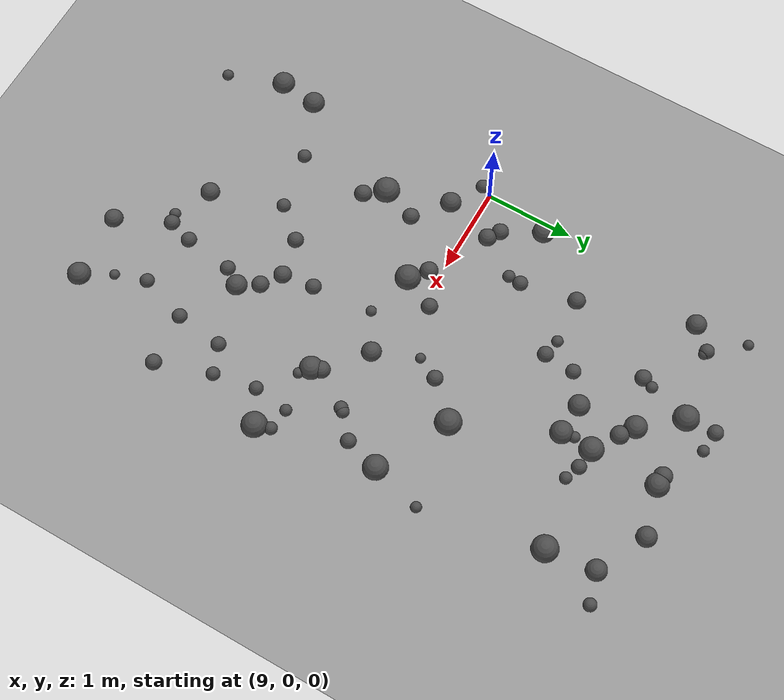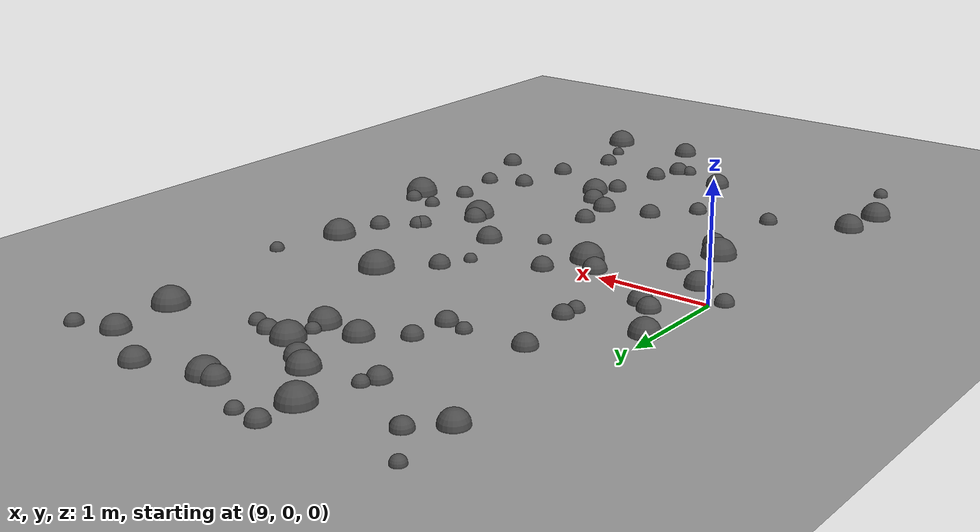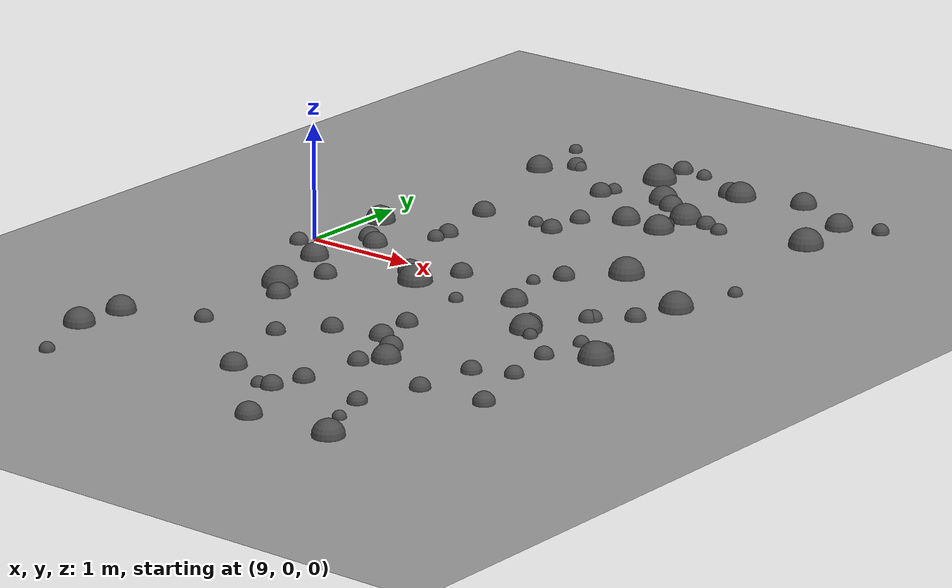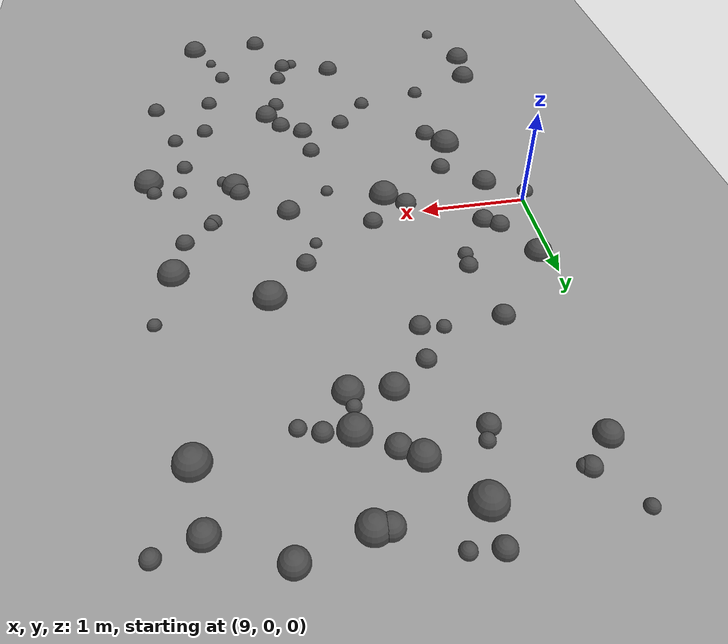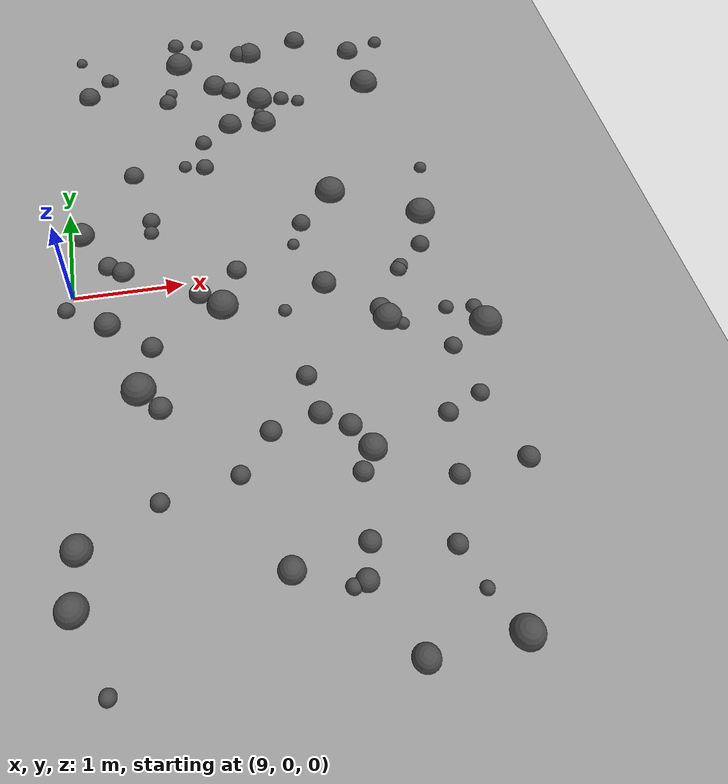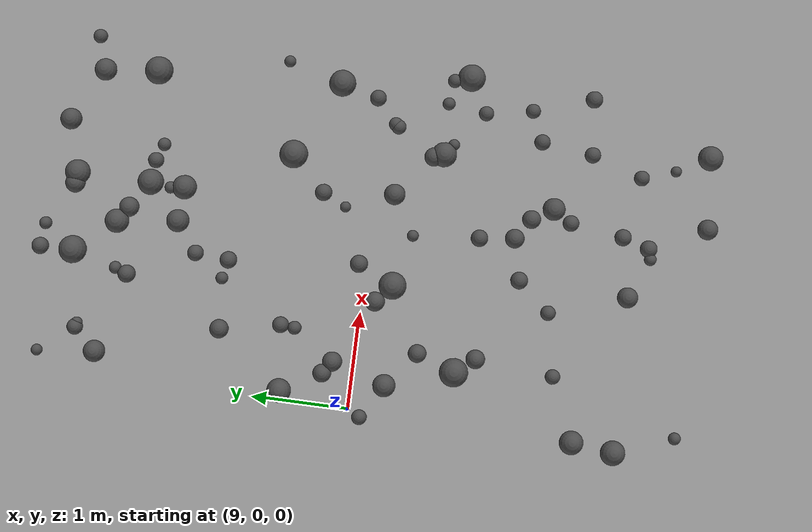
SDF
<sdf version="1.8">
 <world name="bumpy_world">
  <model name="ground_plane">
   <static>true</static>
   <link name="link">
    <collision name="collision">
     <geometry><plane><normal>0 0 1</normal><size>100 100</size></plane></geometry>
    </collision>
    <visual name="visual">
     <geometry><plane><normal>0 0 1</normal><size>100 100</size></plane></geometry>
     <material><ambient>0.6 0.6 0.6 1</ambient><diffuse>0.6 0.6 0.6 1</diffuse></material>
    </visual>
   </link>
  </model>
  <model name="bump_2">
   <static>true</static>
   <pose>10.78362684058745 2.53112443563 0.0 0 0 0</pose>
   <link name="link">
    <collision name="collision">
     <geometry><sphere><radius>0.1036423874634214</radius></sphere></geometry>
    </collision>
    <visual name="visual">
     <geometry><sphere><radius>0.1036423874634214</radius></sphere></geometry>
     <material><ambient>0.3 0.3 0.3 1</ambient><diffuse>0.3 0.3 0.3 1</diffuse></material>
    </visual>
   </link>
  </model>
  <model name="bump_5">
   <static>true</static>
   <pose>11.07236753158197 2.3464384934078577 0.0 0 0 0</pose>
   <link name="link">
    <collision name="collision">
     <geometry><sphere><radius>0.13613267017171343</radius></sphere></geometry>
    </collision>
    <visual name="visual">
     <geometry><sphere><radius>0.13613267017171343</radius></sphere></geometry>
     <material><ambient>0.3 0.3 0.3 1</ambient><diffuse>0.3 0.3 0.3 1</diffuse></material>
    </visual>
   </link>
  </model>
  <model name="bump_7">
   <static>true</static>
   <pose>10.704462672300258 2.008785588336943 0.0 0 0 0</pose>
   <link name="link">
    <collision name="collision">
     <geometry><sphere><radius>0.11955917482990376</radius></sphere></geometry>
    </collision>
    <visual name="visual">
     <geometry><sphere><radius>0.11955917482990376</radius></sphere></geometry>
     <material><ambient>0.3 0.3 0.3 1</ambient><diffuse>0.3 0.3 0.3 1</diffuse></material>
    </visual>
   </link>
  </model>
  <model name="bump_14">
   <static>true</static>
   <pose>9.646156853162468 1.4279251669553972 0.0 0 0 0</pose>
   <link name="link">
    <collision name="collision">
     <geometry><sphere><radius>0.09876939465368231</radius></sphere></geometry>
    </collision>
    <visual name="visual">
     <geometry><sphere><radius>0.09876939465368231</radius></sphere></geometry>
     <material><ambient>0.3 0.3 0.3 1</ambient><diffuse>0.3 0.3 0.3 1</diffuse></material>
    </visual>
   </link>
  </model>
  <model name="bump_15">
   <static>true</static>
   <pose>11.625946613682755 3.2676857726138175 0.0 0 0 0</pose>
   <link name="link">
    <collision name="collision">
     <geometry><sphere><radius>0.11263983815154456</radius></sphere></geometry>
    </collision>
    <visual name="visual">
     <geometry><sphere><radius>0.11263983815154456</radius></sphere></geometry>
     <material><ambient>0.3 0.3 0.3 1</ambient><diffuse>0.3 0.3 0.3 1</diffuse></material>
    </visual>
   </link>
  </model>
  <model name="bump_26">
   <static>true</static>
   <pose>10.92503154067586 -1.1284749881299905 0.0 0 0 0</pose>
   <link name="link">
    <collision name="collision">
     <geometry><sphere><radius>0.08945810783136997</radius></sphere></geometry>
    </collision>
    <visual name="visual">
     <geometry><sphere><radius>0.08945810783136997</radius></sphere></geometry>
     <material><ambient>0.3 0.3 0.3 1</ambient><diffuse>0.3 0.3 0.3 1</diffuse></material>
    </visual>
   </link>
  </model>
  <model name="bump_40">
   <static>true</static>
   <pose>12.256618213254518 0.10426173945617512 0.0 0 0 0</pose>
   <link name="link">
    <collision name="collision">
     <geometry><sphere><radius>0.0865128517686642</radius></sphere></geometry>
    </collision>
    <visual name="visual">
     <geometry><sphere><radius>0.0865128517686642</radius></sphere></geometry>
     <material><ambient>0.3 0.3 0.3 1</ambient><diffuse>0.3 0.3 0.3 1</diffuse></material>
    </visual>
   </link>
  </model>
  <model name="bump_41">
   <static>true</static>
   <pose>11.554055257485514 0.9058302469195558 0.0 0 0 0</pose>
   <link name="link">
    <collision name="collision">
     <geometry><sphere><radius>0.14887289297945666</radius></sphere></geometry>
    </collision>
    <visual name="visual">
     <geometry><sphere><radius>0.14887289297945666</radius></sphere></geometry>
     <material><ambient>0.3 0.3 0.3 1</ambient><diffuse>0.3 0.3 0.3 1</diffuse></material>
    </visual>
   </link>
  </model>
  <model name="bump_42">
   <static>true</static>
   <pose>9.095948775680085 0.7302529021353301 0.0 0 0 0</pose>
   <link name="link">
    <collision name="collision">
     <geometry><sphere><radius>0.12548143702899986</radius></sphere></geometry>
    </collision>
    <visual name="visual">
     <geometry><sphere><radius>0.12548143702899986</radius></sphere></geometry>
     <material><ambient>0.3 0.3 0.3 1</ambient><diffuse>0.3 0.3 0.3 1</diffuse></material>
    </visual>
   </link>
  </model>
  <model name="bump_52">
   <static>true</static>
   <pose>9.596266533373393 -2.0492188293624967 0.0 0 0 0</pose>
   <link name="link">
    <collision name="collision">
     <geometry><sphere><radius>0.07825445300191354</radius></sphere></geometry>
    </collision>
    <visual name="visual">
     <geometry><sphere><radius>0.07825445300191354</radius></sphere></geometry>
     <material><ambient>0.3 0.3 0.3 1</ambient><diffuse>0.3 0.3 0.3 1</diffuse></material>
    </visual>
   </link>
  </model>
  <model name="bump_56">
   <static>true</static>
   <pose>10.861182778202085 -0.4381310235646789 0.0 0 0 0</pose>
   <link name="link">
    <collision name="collision">
     <geometry><sphere><radius>0.060162493425406416</radius></sphere></geometry>
    </collision>
    <visual name="visual">
     <geometry><sphere><radius>0.060162493425406416</radius></sphere></geometry>
     <material><ambient>0.3 0.3 0.3 1</ambient><diffuse>0.3 0.3 0.3 1</diffuse></material>
    </visual>
   </link>
  </model>
  <model name="bump_60">
   <static>true</static>
   <pose>12.19125369474031 2.9844479805425097 0.0 0 0 0</pose>
   <link name="link">
    <collision name="collision">
     <geometry><sphere><radius>0.11688679470605738</radius></sphere></geometry>
    </collision>
    <visual name="visual">
     <geometry><sphere><radius>0.11688679470605738</radius></sphere></geometry>
     <material><ambient>0.3 0.3 0.3 1</ambient><diffuse>0.3 0.3 0.3 1</diffuse></material>
    </visual>
   </link>
  </model>
  <model name="bump_77">
   <static>true</static>
   <pose>12.526068392680772 1.0733581746996483 0.0 0 0 0</pose>
   <link name="link">
    <collision name="collision">
     <geometry><sphere><radius>0.061747364357610336</radius></sphere></geometry>
    </collision>
    <visual name="visual">
     <geometry><sphere><radius>0.061747364357610336</radius></sphere></geometry>
     <material><ambient>0.3 0.3 0.3 1</ambient><diffuse>0.3 0.3 0.3 1</diffuse></material>
    </visual>
   </link>
  </model>
  <model name="bump_80">
   <static>true</static>
   <pose>12.010883348760713 -1.6597990454577753 0.0 0 0 0</pose>
   <link name="link">
    <collision name="collision">
     <geometry><sphere><radius>0.08428400428994884</radius></sphere></geometry>
    </collision>
    <visual name="visual">
     <geometry><sphere><radius>0.08428400428994884</radius></sphere></geometry>
     <material><ambient>0.3 0.3 0.3 1</ambient><diffuse>0.3 0.3 0.3 1</diffuse></material>
    </visual>
   </link>
  </model>
  <model name="bump_84">
   <static>true</static>
   <pose>11.765441365856477 -2.73373470274147 0.0 0 0 0</pose>
   <link name="link">
    <collision name="collision">
     <geometry><sphere><radius>0.08095452946047246</radius></sphere></geometry>
    </collision>
    <visual name="visual">
     <geometry><sphere><radius>0.08095452946047246</radius></sphere></geometry>
     <material><ambient>0.3 0.3 0.3 1</ambient><diffuse>0.3 0.3 0.3 1</diffuse></material>
    </visual>
   </link>
  </model>
  <model name="bump_95">
   <static>true</static>
   <pose>11.749811479082627 -0.6565528794193205 0.0 0 0 0</pose>
   <link name="link">
    <collision name="collision">
     <geometry><sphere><radius>0.1316098256338052</radius></sphere></geometry>
    </collision>
    <visual name="visual">
     <geometry><sphere><radius>0.1316098256338052</radius></sphere></geometry>
     <material><ambient>0.3 0.3 0.3 1</ambient><diffuse>0.3 0.3 0.3 1</diffuse></material>
    </visual>
   </link>
  </model>
  <model name="bump_103">
   <static>true</static>
   <pose>9.520685048044456 2.8961846301688867 0.0 0 0 0</pose>
   <link name="link">
    <collision name="collision">
     <geometry><sphere><radius>0.061110428575138744</radius></sphere></geometry>
    </collision>
    <visual name="visual">
     <geometry><sphere><radius>0.061110428575138744</radius></sphere></geometry>
     <material><ambient>0.3 0.3 0.3 1</ambient><diffuse>0.3 0.3 0.3 1</diffuse></material>
    </visual>
   </link>
  </model>
  <model name="bump_109">
   <static>true</static>
   <pose>12.326138086171571 -1.5259539511885036 0.0 0 0 0</pose>
   <link name="link">
    <collision name="collision">
     <geometry><sphere><radius>0.0774266165104542</radius></sphere></geometry>
    </collision>
    <visual name="visual">
     <geometry><sphere><radius>0.0774266165104542</radius></sphere></geometry>
     <material><ambient>0.3 0.3 0.3 1</ambient><diffuse>0.3 0.3 0.3 1</diffuse></material>
    </visual>
   </link>
  </model>
  <model name="bump_121">
   <static>true</static>
   <pose>10.17059584041505 1.4709519350816747 0.0 0 0 0</pose>
   <link name="link">
    <collision name="collision">
     <geometry><sphere><radius>0.06474884671113433</radius></sphere></geometry>
    </collision>
    <visual name="visual">
     <geometry><sphere><radius>0.06474884671113433</radius></sphere></geometry>
     <material><ambient>0.3 0.3 0.3 1</ambient><diffuse>0.3 0.3 0.3 1</diffuse></material>
    </visual>
   </link>
  </model>
  <model name="bump_122">
   <static>true</static>
   <pose>11.881641562806102 -3.0813434550802077 0.0 0 0 0</pose>
   <link name="link">
    <collision name="collision">
     <geometry><sphere><radius>0.05676529590241665</radius></sphere></geometry>
    </collision>
    <visual name="visual">
     <geometry><sphere><radius>0.05676529590241665</radius></sphere></geometry>
     <material><ambient>0.3 0.3 0.3 1</ambient><diffuse>0.3 0.3 0.3 1</diffuse></material>
    </visual>
   </link>
  </model>
  <model name="bump_123">
   <static>true</static>
   <pose>11.071502095494644 0.29602541178691055 0.0 0 0 0</pose>
   <link name="link">
    <collision name="collision">
     <geometry><sphere><radius>0.056810069849721714</radius></sphere></geometry>
    </collision>
    <visual name="visual">
     <geometry><sphere><radius>0.056810069849721714</radius></sphere></geometry>
     <material><ambient>0.3 0.3 0.3 1</ambient><diffuse>0.3 0.3 0.3 1</diffuse></material>
    </visual>
   </link>
  </model>
  <model name="bump_124">
   <static>true</static>
   <pose>10.96375124948189 3.1250019010177477 0.0 0 0 0</pose>
   <link name="link">
    <collision name="collision">
     <geometry><sphere><radius>0.1041748961307924</radius></sphere></geometry>
    </collision>
    <visual name="visual">
     <geometry><sphere><radius>0.1041748961307924</radius></sphere></geometry>
     <material><ambient>0.3 0.3 0.3 1</ambient><diffuse>0.3 0.3 0.3 1</diffuse></material>
    </visual>
   </link>
  </model>
  <model name="bump_125">
   <static>true</static>
   <pose>12.365685379624251 0.49623456738642346 0.0 0 0 0</pose>
   <link name="link">
    <collision name="collision">
     <geometry><sphere><radius>0.14093932478722948</radius></sphere></geometry>
    </collision>
    <visual name="visual">
     <geometry><sphere><radius>0.14093932478722948</radius></sphere></geometry>
     <material><ambient>0.3 0.3 0.3 1</ambient><diffuse>0.3 0.3 0.3 1</diffuse></material>
    </visual>
   </link>
  </model>
  <model name="bump_127">
   <static>true</static>
   <pose>11.189520942816587 -1.6420454674721308 0.0 0 0 0</pose>
   <link name="link">
    <collision name="collision">
     <geometry><sphere><radius>0.0971648140264737</radius></sphere></geometry>
    </collision>
    <visual name="visual">
     <geometry><sphere><radius>0.0971648140264737</radius></sphere></geometry>
     <material><ambient>0.3 0.3 0.3 1</ambient><diffuse>0.3 0.3 0.3 1</diffuse></material>
    </visual>
   </link>
  </model>
  <model name="bump_134">
   <static>true</static>
   <pose>10.366265585729085 1.4303398479487859 0.0 0 0 0</pose>
   <link name="link">
    <collision name="collision">
     <geometry><sphere><radius>0.09009673819694826</radius></sphere></geometry>
    </collision>
    <visual name="visual">
     <geometry><sphere><radius>0.09009673819694826</radius></sphere></geometry>
     <material><ambient>0.3 0.3 0.3 1</ambient><diffuse>0.3 0.3 0.3 1</diffuse></material>
    </visual>
   </link>
  </model>
  <model name="bump_144">
   <static>true</static>
   <pose>10.968534962002316 -1.4926902003466411 0.0 0 0 0</pose>
   <link name="link">
    <collision name="collision">
     <geometry><sphere><radius>0.10072325624887085</radius></sphere></geometry>
    </collision>
    <visual name="visual">
     <geometry><sphere><radius>0.10072325624887085</radius></sphere></geometry>
     <material><ambient>0.3 0.3 0.3 1</ambient><diffuse>0.3 0.3 0.3 1</diffuse></material>
    </visual>
   </link>
  </model>
  <model name="bump_155">
   <static>true</static>
   <pose>9.756350496953276 0.6545452931053948 0.0 0 0 0</pose>
   <link name="link">
    <collision name="collision">
     <geometry><sphere><radius>0.07071736511704449</radius></sphere></geometry>
    </collision>
    <visual name="visual">
     <geometry><sphere><radius>0.07071736511704449</radius></sphere></geometry>
     <material><ambient>0.3 0.3 0.3 1</ambient><diffuse>0.3 0.3 0.3 1</diffuse></material>
    </visual>
   </link>
  </model>
  <model name="bump_164">
   <static>true</static>
   <pose>11.061467543177573 1.988942436410377 0.0 0 0 0</pose>
   <link name="link">
    <collision name="collision">
     <geometry><sphere><radius>0.12744176860171985</radius></sphere></geometry>
    </collision>
    <visual name="visual">
     <geometry><sphere><radius>0.12744176860171985</radius></sphere></geometry>
     <material><ambient>0.3 0.3 0.3 1</ambient><diffuse>0.3 0.3 0.3 1</diffuse></material>
    </visual>
   </link>
  </model>
  <model name="bump_170">
   <static>true</static>
   <pose>9.478141253929147 2.9093622856335593 0.0 0 0 0</pose>
   <link name="link">
    <collision name="collision">
     <geometry><sphere><radius>0.08365472788900125</radius></sphere></geometry>
    </collision>
    <visual name="visual">
     <geometry><sphere><radius>0.08365472788900125</radius></sphere></geometry>
     <material><ambient>0.3 0.3 0.3 1</ambient><diffuse>0.3 0.3 0.3 1</diffuse></material>
    </visual>
   </link>
  </model>
  <model name="bump_173">
   <static>true</static>
   <pose>10.263566539408146 3.3898159695439363 0.0 0 0 0</pose>
   <link name="link">
    <collision name="collision">
     <geometry><sphere><radius>0.08849058785013476</radius></sphere></geometry>
    </collision>
    <visual name="visual">
     <geometry><sphere><radius>0.08849058785013476</radius></sphere></geometry>
     <material><ambient>0.3 0.3 0.3 1</ambient><diffuse>0.3 0.3 0.3 1</diffuse></material>
    </visual>
   </link>
  </model>
  <model name="bump_175">
   <static>true</static>
   <pose>12.529558580781904 -2.1475839280405027 0.0 0 0 0</pose>
   <link name="link">
    <collision name="collision">
     <geometry><sphere><radius>0.09016220151590448</radius></sphere></geometry>
    </collision>
    <visual name="visual">
     <geometry><sphere><radius>0.09016220151590448</radius></sphere></geometry>
     <material><ambient>0.3 0.3 0.3 1</ambient><diffuse>0.3 0.3 0.3 1</diffuse></material>
    </visual>
   </link>
  </model>
  <model name="bump_176">
   <static>true</static>
   <pose>10.506611315195903 -2.7245847952300495 0.0 0 0 0</pose>
   <link name="link">
    <collision name="collision">
     <geometry><sphere><radius>0.10808790780963093</radius></sphere></geometry>
    </collision>
    <visual name="visual">
     <geometry><sphere><radius>0.10808790780963093</radius></sphere></geometry>
     <material><ambient>0.3 0.3 0.3 1</ambient><diffuse>0.3 0.3 0.3 1</diffuse></material>
    </visual>
   </link>
  </model>
  <model name="bump_177">
   <static>true</static>
   <pose>9.191453124572487 3.2637795876597195 0.0 0 0 0</pose>
   <link name="link">
    <collision name="collision">
     <geometry><sphere><radius>0.05924876556170361</radius></sphere></geometry>
    </collision>
    <visual name="visual">
     <geometry><sphere><radius>0.05924876556170361</radius></sphere></geometry>
     <material><ambient>0.3 0.3 0.3 1</ambient><diffuse>0.3 0.3 0.3 1</diffuse></material>
    </visual>
   </link>
  </model>
  <model name="bump_184">
   <static>true</static>
   <pose>11.865148797461378 -0.7458689904874238 0.0 0 0 0</pose>
   <link name="link">
    <collision name="collision">
     <geometry><sphere><radius>0.060106648727251626</radius></sphere></geometry>
    </collision>
    <visual name="visual">
     <geometry><sphere><radius>0.060106648727251626</radius></sphere></geometry>
     <material><ambient>0.3 0.3 0.3 1</ambient><diffuse>0.3 0.3 0.3 1</diffuse></material>
    </visual>
   </link>
  </model>
  <model name="bump_186">
   <static>true</static>
   <pose>10.50620663726383 3.3682166270964853 0.0 0 0 0</pose>
   <link name="link">
    <collision name="collision">
     <geometry><sphere><radius>0.06579710199843511</radius></sphere></geometry>
    </collision>
    <visual name="visual">
     <geometry><sphere><radius>0.06579710199843511</radius></sphere></geometry>
     <material><ambient>0.3 0.3 0.3 1</ambient><diffuse>0.3 0.3 0.3 1</diffuse></material>
    </visual>
   </link>
  </model>
  <model name="bump_189">
   <static>true</static>
   <pose>10.132169962377983 -0.13438430795026068 0.0 0 0 0</pose>
   <link name="link">
    <collision name="collision">
     <geometry><sphere><radius>0.10249066886720848</radius></sphere></geometry>
    </collision>
    <visual name="visual">
     <geometry><sphere><radius>0.10249066886720848</radius></sphere></geometry>
     <material><ambient>0.3 0.3 0.3 1</ambient><diffuse>0.3 0.3 0.3 1</diffuse></material>
    </visual>
   </link>
  </model>
  <model name="bump_190">
   <static>true</static>
   <pose>11.324646876664774 -1.862748143699362 0.0 0 0 0</pose>
   <link name="link">
    <collision name="collision">
     <geometry><sphere><radius>0.11855546360009726</radius></sphere></geometry>
    </collision>
    <visual name="visual">
     <geometry><sphere><radius>0.11855546360009726</radius></sphere></geometry>
     <material><ambient>0.3 0.3 0.3 1</ambient><diffuse>0.3 0.3 0.3 1</diffuse></material>
    </visual>
   </link>
  </model>
  <model name="bump_192">
   <static>true</static>
   <pose>9.673391429541526 -1.238008133976531 0.0 0 0 0</pose>
   <link name="link">
    <collision name="collision">
     <geometry><sphere><radius>0.09988055282215891</radius></sphere></geometry>
    </collision>
    <visual name="visual">
     <geometry><sphere><radius>0.09988055282215891</radius></sphere></geometry>
     <material><ambient>0.3 0.3 0.3 1</ambient><diffuse>0.3 0.3 0.3 1</diffuse></material>
    </visual>
   </link>
  </model>
  <model name="bump_193">
   <static>true</static>
   <pose>11.481320950883179 2.2603832472505605 0.0 0 0 0</pose>
   <link name="link">
    <collision name="collision">
     <geometry><sphere><radius>0.06916662596777798</radius></sphere></geometry>
    </collision>
    <visual name="visual">
     <geometry><sphere><radius>0.06916662596777798</radius></sphere></geometry>
     <material><ambient>0.3 0.3 0.3 1</ambient><diffuse>0.3 0.3 0.3 1</diffuse></material>
    </visual>
   </link>
  </model>
  <model name="bump_202">
   <static>true</static>
   <pose>11.193446704143991 0.5426961737212936 0.0 0 0 0</pose>
   <link name="link">
    <collision name="collision">
     <geometry><sphere><radius>0.08960724840775873</radius></sphere></geometry>
    </collision>
    <visual name="visual">
     <geometry><sphere><radius>0.08960724840775873</radius></sphere></geometry>
     <material><ambient>0.3 0.3 0.3 1</ambient><diffuse>0.3 0.3 0.3 1</diffuse></material>
    </visual>
   </link>
  </model>
  <model name="bump_210">
   <static>true</static>
   <pose>10.622787337410053 2.6367713395201173 0.0 0 0 0</pose>
   <link name="link">
    <collision name="collision">
     <geometry><sphere><radius>0.12622461632621518</radius></sphere></geometry>
    </collision>
    <visual name="visual">
     <geometry><sphere><radius>0.12622461632621518</radius></sphere></geometry>
     <material><ambient>0.3 0.3 0.3 1</ambient><diffuse>0.3 0.3 0.3 1</diffuse></material>
    </visual>
   </link>
  </model>
  <model name="bump_212">
   <static>true</static>
   <pose>11.3166483775649 -3.471649252347652 0.0 0 0 0</pose>
   <link name="link">
    <collision name="collision">
     <geometry><sphere><radius>0.10636746314277407</radius></sphere></geometry>
    </collision>
    <visual name="visual">
     <geometry><sphere><radius>0.10636746314277407</radius></sphere></geometry>
     <material><ambient>0.3 0.3 0.3 1</ambient><diffuse>0.3 0.3 0.3 1</diffuse></material>
    </visual>
   </link>
  </model>
  <model name="bump_218">
   <static>true</static>
   <pose>11.942252188674322 -2.198636156649336 0.0 0 0 0</pose>
   <link name="link">
    <collision name="collision">
     <geometry><sphere><radius>0.0845624371480261</radius></sphere></geometry>
    </collision>
    <visual name="visual">
     <geometry><sphere><radius>0.0845624371480261</radius></sphere></geometry>
     <material><ambient>0.3 0.3 0.3 1</ambient><diffuse>0.3 0.3 0.3 1</diffuse></material>
    </visual>
   </link>
  </model>
  <model name="bump_224">
   <static>true</static>
   <pose>9.6556591760613 -0.6354817693813755 0.0 0 0 0</pose>
   <link name="link">
    <collision name="collision">
     <geometry><sphere><radius>0.09516452093290034</radius></sphere></geometry>
    </collision>
    <visual name="visual">
     <geometry><sphere><radius>0.09516452093290034</radius></sphere></geometry>
     <material><ambient>0.3 0.3 0.3 1</ambient><diffuse>0.3 0.3 0.3 1</diffuse></material>
    </visual>
   </link>
  </model>
  <model name="bump_227">
   <static>true</static>
   <pose>11.122669042470509 -2.6083087789137096 0.0 0 0 0</pose>
   <link name="link">
    <collision name="collision">
     <geometry><sphere><radius>0.08848600405674764</radius></sphere></geometry>
    </collision>
    <visual name="visual">
     <geometry><sphere><radius>0.08848600405674764</radius></sphere></geometry>
     <material><ambient>0.3 0.3 0.3 1</ambient><diffuse>0.3 0.3 0.3 1</diffuse></material>
    </visual>
   </link>
  </model>
  <model name="bump_228">
   <static>true</static>
   <pose>9.254473900145689 2.6744970298214747 0.0 0 0 0</pose>
   <link name="link">
    <collision name="collision">
     <geometry><sphere><radius>0.1138033459010121</radius></sphere></geometry>
    </collision>
    <visual name="visual">
     <geometry><sphere><radius>0.1138033459010121</radius></sphere></geometry>
     <material><ambient>0.3 0.3 0.3 1</ambient><diffuse>0.3 0.3 0.3 1</diffuse></material>
    </visual>
   </link>
  </model>
  <model name="bump_232">
   <static>true</static>
   <pose>11.306070047934673 2.323637995523665 0.0 0 0 0</pose>
   <link name="link">
    <collision name="collision">
     <geometry><sphere><radius>0.08330061149076587</radius></sphere></geometry>
    </collision>
    <visual name="visual">
     <geometry><sphere><radius>0.08330061149076587</radius></sphere></geometry>
     <material><ambient>0.3 0.3 0.3 1</ambient><diffuse>0.3 0.3 0.3 1</diffuse></material>
    </visual>
   </link>
  </model>
  <model name="bump_245">
   <static>true</static>
   <pose>11.979270554193043 -0.14930820414526114 0.0 0 0 0</pose>
   <link name="link">
    <collision name="collision">
     <geometry><sphere><radius>0.07710543772001852</radius></sphere></geometry>
    </collision>
    <visual name="visual">
     <geometry><sphere><radius>0.07710543772001852</radius></sphere></geometry>
     <material><ambient>0.3 0.3 0.3 1</ambient><diffuse>0.3 0.3 0.3 1</diffuse></material>
    </visual>
   </link>
  </model>
  <model name="bump_256">
   <static>true</static>
   <pose>10.317765736327287 -0.29340971130946425 0.0 0 0 0</pose>
   <link name="link">
    <collision name="collision">
     <geometry><sphere><radius>0.1442481284603513</radius></sphere></geometry>
    </collision>
    <visual name="visual">
     <geometry><sphere><radius>0.1442481284603513</radius></sphere></geometry>
     <material><ambient>0.3 0.3 0.3 1</ambient><diffuse>0.3 0.3 0.3 1</diffuse></material>
    </visual>
   </link>
  </model>
  <model name="bump_259">
   <static>true</static>
   <pose>10.93019107787146 -2.9137236503575683 0.0 0 0 0</pose>
   <link name="link">
    <collision name="collision">
     <geometry><sphere><radius>0.06384515483627765</radius></sphere></geometry>
    </collision>
    <visual name="visual">
     <geometry><sphere><radius>0.06384515483627765</radius></sphere></geometry>
     <material><ambient>0.3 0.3 0.3 1</ambient><diffuse>0.3 0.3 0.3 1</diffuse></material>
    </visual>
   </link>
  </model>
  <model name="bump_260">
   <static>true</static>
   <pose>12.540777860518403 -0.67185939153378 0.0 0 0 0</pose>
   <link name="link">
    <collision name="collision">
     <geometry><sphere><radius>0.07305995940420867</radius></sphere></geometry>
    </collision>
    <visual name="visual">
     <geometry><sphere><radius>0.07305995940420867</radius></sphere></geometry>
     <material><ambient>0.3 0.3 0.3 1</ambient><diffuse>0.3 0.3 0.3 1</diffuse></material>
    </visual>
   </link>
  </model>
  <model name="bump_263">
   <static>true</static>
   <pose>10.540347638157847 -1.5902134621916884 0.0 0 0 0</pose>
   <link name="link">
    <collision name="collision">
     <geometry><sphere><radius>0.09088139185228515</radius></sphere></geometry>
    </collision>
    <visual name="visual">
     <geometry><sphere><radius>0.09088139185228515</radius></sphere></geometry>
     <material><ambient>0.3 0.3 0.3 1</ambient><diffuse>0.3 0.3 0.3 1</diffuse></material>
    </visual>
   </link>
  </model>
  <model name="bump_266">
   <static>true</static>
   <pose>12.252991581376984 2.427532305296947 0.0 0 0 0</pose>
   <link name="link">
    <collision name="collision">
     <geometry><sphere><radius>0.14777058843713997</radius></sphere></geometry>
    </collision>
    <visual name="visual">
     <geometry><sphere><radius>0.14777058843713997</radius></sphere></geometry>
     <material><ambient>0.3 0.3 0.3 1</ambient><diffuse>0.3 0.3 0.3 1</diffuse></material>
    </visual>
   </link>
  </model>
  <model name="bump_269">
   <static>true</static>
   <pose>10.137728100184262 2.5831544892893596 0.0 0 0 0</pose>
   <link name="link">
    <collision name="collision">
     <geometry><sphere><radius>0.065282154772798</radius></sphere></geometry>
    </collision>
    <visual name="visual">
     <geometry><sphere><radius>0.065282154772798</radius></sphere></geometry>
     <material><ambient>0.3 0.3 0.3 1</ambient><diffuse>0.3 0.3 0.3 1</diffuse></material>
    </visual>
   </link>
  </model>
  <model name="bump_274">
   <static>true</static>
   <pose>10.499038818590618 0.08002685863211578 0.0 0 0 0</pose>
   <link name="link">
    <collision name="collision">
     <geometry><sphere><radius>0.09313041079709689</radius></sphere></geometry>
    </collision>
    <visual name="visual">
     <geometry><sphere><radius>0.09313041079709689</radius></sphere></geometry>
     <material><ambient>0.3 0.3 0.3 1</ambient><diffuse>0.3 0.3 0.3 1</diffuse></material>
    </visual>
   </link>
  </model>
  <model name="bump_281">
   <static>true</static>
   <pose>9.329821752007527 0.3134821420230729 0.0 0 0 0</pose>
   <link name="link">
    <collision name="collision">
     <geometry><sphere><radius>0.09554551240343559</radius></sphere></geometry>
    </collision>
    <visual name="visual">
     <geometry><sphere><radius>0.09554551240343559</radius></sphere></geometry>
     <material><ambient>0.3 0.3 0.3 1</ambient><diffuse>0.3 0.3 0.3 1</diffuse></material>
    </visual>
   </link>
  </model>
  <model name="bump_287">
   <static>true</static>
   <pose>11.04050213801234 2.1318023159688515 0.0 0 0 0</pose>
   <link name="link">
    <collision name="collision">
     <geometry><sphere><radius>0.06303590573141533</radius></sphere></geometry>
    </collision>
    <visual name="visual">
     <geometry><sphere><radius>0.06303590573141533</radius></sphere></geometry>
     <material><ambient>0.3 0.3 0.3 1</ambient><diffuse>0.3 0.3 0.3 1</diffuse></material>
    </visual>
   </link>
  </model>
  <model name="bump_289">
   <static>true</static>
   <pose>12.237522675424085 -1.0417581643749214 0.0 0 0 0</pose>
   <link name="link">
    <collision name="collision">
     <geometry><sphere><radius>0.07898436695272737</radius></sphere></geometry>
    </collision>
    <visual name="visual">
     <geometry><sphere><radius>0.07898436695272737</radius></sphere></geometry>
     <material><ambient>0.3 0.3 0.3 1</ambient><diffuse>0.3 0.3 0.3 1</diffuse></material>
    </visual>
   </link>
  </model>
  <model name="bump_290">
   <static>true</static>
   <pose>9.50850346189621 -1.0319030001218876 0.0 0 0 0</pose>
   <link name="link">
    <collision name="collision">
     <geometry><sphere><radius>0.14992639878725722</radius></sphere></geometry>
    </collision>
    <visual name="visual">
     <geometry><sphere><radius>0.14992639878725722</radius></sphere></geometry>
     <material><ambient>0.3 0.3 0.3 1</ambient><diffuse>0.3 0.3 0.3 1</diffuse></material>
    </visual>
   </link>
  </model>
  <model name="bump_296">
   <static>true</static>
   <pose>8.931577849901025 -0.12475464198403197 0.0 0 0 0</pose>
   <link name="link">
    <collision name="collision">
     <geometry><sphere><radius>0.07875549065508254</radius></sphere></geometry>
    </collision>
    <visual name="visual">
     <geometry><sphere><radius>0.07875549065508254</radius></sphere></geometry>
     <material><ambient>0.3 0.3 0.3 1</ambient><diffuse>0.3 0.3 0.3 1</diffuse></material>
    </visual>
   </link>
  </model>
  <model name="bump_301">
   <static>true</static>
   <pose>9.128281775290034 -3.3621682670431703 0.0 0 0 0</pose>
   <link name="link">
    <collision name="collision">
     <geometry><sphere><radius>0.06440854302469334</radius></sphere></geometry>
    </collision>
    <visual name="visual">
     <geometry><sphere><radius>0.06440854302469334</radius></sphere></geometry>
     <material><ambient>0.3 0.3 0.3 1</ambient><diffuse>0.3 0.3 0.3 1</diffuse></material>
    </visual>
   </link>
  </model>
  <model name="bump_309">
   <static>true</static>
   <pose>11.200981933293903 -2.053924637629408 0.0 0 0 0</pose>
   <link name="link">
    <collision name="collision">
     <geometry><sphere><radius>0.0854822900738448</radius></sphere></geometry>
    </collision>
    <visual name="visual">
     <geometry><sphere><radius>0.0854822900738448</radius></sphere></geometry>
     <material><ambient>0.3 0.3 0.3 1</ambient><diffuse>0.3 0.3 0.3 1</diffuse></material>
    </visual>
   </link>
  </model>
  <model name="bump_310">
   <static>true</static>
   <pose>11.077650614685524 3.1166729600084135 0.0 0 0 0</pose>
   <link name="link">
    <collision name="collision">
     <geometry><sphere><radius>0.13192782449642573</radius></sphere></geometry>
    </collision>
    <visual name="visual">
     <geometry><sphere><radius>0.13192782449642573</radius></sphere></geometry>
     <material><ambient>0.3 0.3 0.3 1</ambient><diffuse>0.3 0.3 0.3 1</diffuse></material>
    </visual>
   </link>
  </model>
  <model name="bump_312">
   <static>true</static>
   <pose>10.394283204865554 1.7792911295298692 0.0 0 0 0</pose>
   <link name="link">
    <collision name="collision">
     <geometry><sphere><radius>0.08488393670837904</radius></sphere></geometry>
    </collision>
    <visual name="visual">
     <geometry><sphere><radius>0.08488393670837904</radius></sphere></geometry>
     <material><ambient>0.3 0.3 0.3 1</ambient><diffuse>0.3 0.3 0.3 1</diffuse></material>
    </visual>
   </link>
  </model>
  <model name="bump_315">
   <static>true</static>
   <pose>9.768821306328544 0.8020141391802138 0.0 0 0 0</pose>
   <link name="link">
    <collision name="collision">
     <geometry><sphere><radius>0.0854674858872885</radius></sphere></geometry>
    </collision>
    <visual name="visual">
     <geometry><sphere><radius>0.0854674858872885</radius></sphere></geometry>
     <material><ambient>0.3 0.3 0.3 1</ambient><diffuse>0.3 0.3 0.3 1</diffuse></material>
    </visual>
   </link>
  </model>
  <model name="bump_320">
   <static>true</static>
   <pose>8.951677219218292 -2.316834526788125 0.0 0 0 0</pose>
   <link name="link">
    <collision name="collision">
     <geometry><sphere><radius>0.12448768133737985</radius></sphere></geometry>
    </collision>
    <visual name="visual">
     <geometry><sphere><radius>0.12448768133737985</radius></sphere></geometry>
     <material><ambient>0.3 0.3 0.3 1</ambient><diffuse>0.3 0.3 0.3 1</diffuse></material>
    </visual>
   </link>
  </model>
  <model name="bump_324">
   <static>true</static>
   <pose>8.901292865011502 -2.750326532119073 0.0 0 0 0</pose>
   <link name="link">
    <collision name="collision">
     <geometry><sphere><radius>0.1292402188982478</radius></sphere></geometry>
    </collision>
    <visual name="visual">
     <geometry><sphere><radius>0.1292402188982478</radius></sphere></geometry>
     <material><ambient>0.3 0.3 0.3 1</ambient><diffuse>0.3 0.3 0.3 1</diffuse></material>
    </visual>
   </link>
  </model>
  <model name="bump_331">
   <static>true</static>
   <pose>12.594207274682464 -0.8429912288945101 0.0 0 0 0</pose>
   <link name="link">
    <collision name="collision">
     <geometry><sphere><radius>0.1437987197490454</radius></sphere></geometry>
    </collision>
    <visual name="visual">
     <geometry><sphere><radius>0.1437987197490454</radius></sphere></geometry>
     <material><ambient>0.3 0.3 0.3 1</ambient><diffuse>0.3 0.3 0.3 1</diffuse></material>
    </visual>
   </link>
  </model>
  <model name="bump_339">
   <static>true</static>
   <pose>11.267674970080524 -0.19592333345595403 0.0 0 0 0</pose>
   <link name="link">
    <collision name="collision">
     <geometry><sphere><radius>0.11079275420804385</radius></sphere></geometry>
    </collision>
    <visual name="visual">
     <geometry><sphere><radius>0.11079275420804385</radius></sphere></geometry>
     <material><ambient>0.3 0.3 0.3 1</ambient><diffuse>0.3 0.3 0.3 1</diffuse></material>
    </visual>
   </link>
  </model>
  <model name="bump_341">
   <static>true</static>
   <pose>10.269010144911856 3.0505475761429137 0.0 0 0 0</pose>
   <link name="link">
    <collision name="collision">
     <geometry><sphere><radius>0.14547711395459517</radius></sphere></geometry>
    </collision>
    <visual name="visual">
     <geometry><sphere><radius>0.14547711395459517</radius></sphere></geometry>
     <material><ambient>0.3 0.3 0.3 1</ambient><diffuse>0.3 0.3 0.3 1</diffuse></material>
    </visual>
   </link>
  </model>
  <model name="bump_354">
   <static>true</static>
   <pose>12.537839240190596 3.0915083929293594 0.0 0 0 0</pose>
   <link name="link">
    <collision name="collision">
     <geometry><sphere><radius>0.07424458410103914</radius></sphere></geometry>
    </collision>
    <visual name="visual">
     <geometry><sphere><radius>0.07424458410103914</radius></sphere></geometry>
     <material><ambient>0.3 0.3 0.3 1</ambient><diffuse>0.3 0.3 0.3 1</diffuse></material>
    </visual>
   </link>
  </model>
  <model name="bump_362">
   <static>true</static>
   <pose>12.291441445861352 -0.6396969838606736 0.0 0 0 0</pose>
   <link name="link">
    <collision name="collision">
     <geometry><sphere><radius>0.06694499758376041</radius></sphere></geometry>
    </collision>
    <visual name="visual">
     <geometry><sphere><radius>0.06694499758376041</radius></sphere></geometry>
     <material><ambient>0.3 0.3 0.3 1</ambient><diffuse>0.3 0.3 0.3 1</diffuse></material>
    </visual>
   </link>
  </model>
  <model name="bump_363">
   <static>true</static>
   <pose>9.284291228242392 -0.3371356063562674 0.0 0 0 0</pose>
   <link name="link">
    <collision name="collision">
     <geometry><sphere><radius>0.11815810421678082</radius></sphere></geometry>
    </collision>
    <visual name="visual">
     <geometry><sphere><radius>0.11815810421678082</radius></sphere></geometry>
     <material><ambient>0.3 0.3 0.3 1</ambient><diffuse>0.3 0.3 0.3 1</diffuse></material>
    </visual>
   </link>
  </model>
  <model name="bump_369">
   <static>true</static>
   <pose>11.712112536794187 -0.5523649829843347 0.0 0 0 0</pose>
   <link name="link">
    <collision name="collision">
     <geometry><sphere><radius>0.09883153081147675</radius></sphere></geometry>
    </collision>
    <visual name="visual">
     <geometry><sphere><radius>0.09883153081147675</radius></sphere></geometry>
     <material><ambient>0.3 0.3 0.3 1</ambient><diffuse>0.3 0.3 0.3 1</diffuse></material>
    </visual>
   </link>
  </model>
  <model name="bump_370">
   <static>true</static>
   <pose>10.089026590492166 2.457682875640825 0.0 0 0 0</pose>
   <link name="link">
    <collision name="collision">
     <geometry><sphere><radius>0.0931557671190793</radius></sphere></geometry>
    </collision>
    <visual name="visual">
     <geometry><sphere><radius>0.0931557671190793</radius></sphere></geometry>
     <material><ambient>0.3 0.3 0.3 1</ambient><diffuse>0.3 0.3 0.3 1</diffuse></material>
    </visual>
   </link>
  </model>
  <model name="bump_376">
   <static>true</static>
   <pose>12.06536956631086 -3.4227238890335894 0.0 0 0 0</pose>
   <link name="link">
    <collision name="collision">
     <geometry><sphere><radius>0.13026786559904388</radius></sphere></geometry>
    </collision>
    <visual name="visual">
     <geometry><sphere><radius>0.13026786559904388</radius></sphere></geometry>
     <material><ambient>0.3 0.3 0.3 1</ambient><diffuse>0.3 0.3 0.3 1</diffuse></material>
    </visual>
   </link>
  </model>
  <model name="bump_382">
   <static>true</static>
   <pose>9.460945380734971 0.2242163116197915 0.0 0 0 0</pose>
   <link name="link">
    <collision name="collision">
     <geometry><sphere><radius>0.10260228008665365</radius></sphere></geometry>
    </collision>
    <visual name="visual">
     <geometry><sphere><radius>0.10260228008665365</radius></sphere></geometry>
     <material><ambient>0.3 0.3 0.3 1</ambient><diffuse>0.3 0.3 0.3 1</diffuse></material>
    </visual>
   </link>
  </model>
  <model name="bump_387">
   <static>true</static>
   <pose>11.037728105708048 -2.8850854040566123 0.0 0 0 0</pose>
   <link name="link">
    <collision name="collision">
     <geometry><sphere><radius>0.09034833901526672</radius></sphere></geometry>
    </collision>
    <visual name="visual">
     <geometry><sphere><radius>0.09034833901526672</radius></sphere></geometry>
     <material><ambient>0.3 0.3 0.3 1</ambient><diffuse>0.3 0.3 0.3 1</diffuse></material>
    </visual>
   </link>
  </model>
  <model name="bump_393">
   <static>true</static>
   <pose>12.005516679386405 -0.1149920859221214 0.0 0 0 0</pose>
   <link name="link">
    <collision name="collision">
     <geometry><sphere><radius>0.07281752403676903</radius></sphere></geometry>
    </collision>
    <visual name="visual">
     <geometry><sphere><radius>0.07281752403676903</radius></sphere></geometry>
     <material><ambient>0.3 0.3 0.3 1</ambient><diffuse>0.3 0.3 0.3 1</diffuse></material>
    </visual>
   </link>
  </model>
  <model name="bump_397">
   <static>true</static>
   <pose>10.242652527685518 -1.925658989689877 0.0 0 0 0</pose>
   <link name="link">
    <collision name="collision">
     <geometry><sphere><radius>0.07915581816583223</radius></sphere></geometry>
    </collision>
    <visual name="visual">
     <geometry><sphere><radius>0.07915581816583223</radius></sphere></geometry>
     <material><ambient>0.3 0.3 0.3 1</ambient><diffuse>0.3 0.3 0.3 1</diffuse></material>
    </visual>
   </link>
  </model>
 </world>
</sdf>
